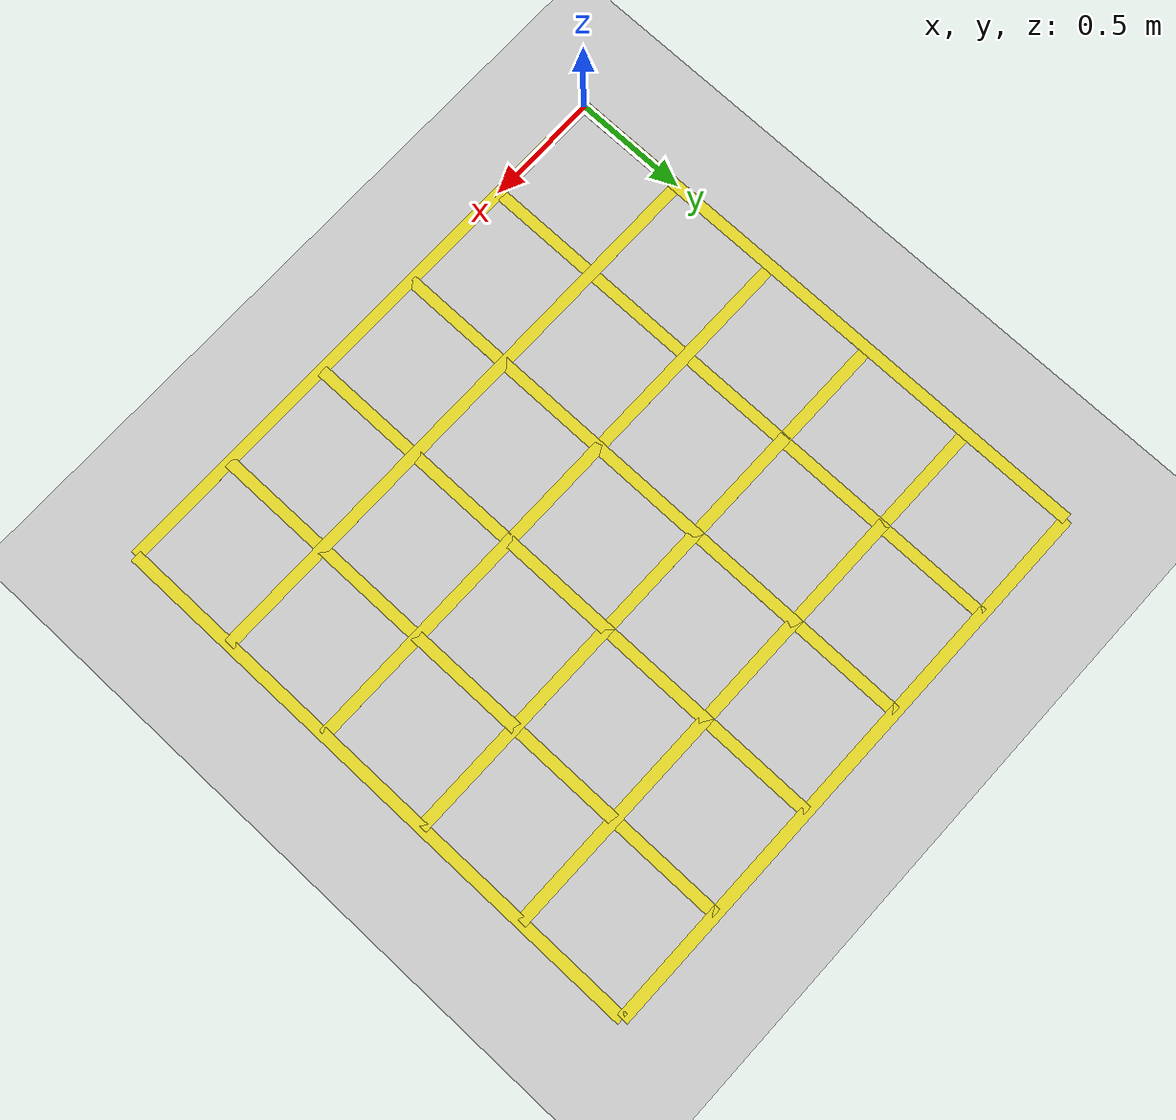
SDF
<sdf version="1.4">
 <world name="default">
  <scene><ambient>0.4 0.4 0.4 1</ambient><background>0.7 0.7 0.7 1</background><shadows>true</shadows></scene>
  <include><uri>model://sun</uri></include>
  <include><uri>model://ground_plane</uri></include>
  <include>
   <name>ly0</name>
   <uri>model://yellow_line</uri>
   <pose>1.25 0 0.0001 0 0 1.570796</pose>
   <static>true</static>
  </include>
  <include>
   <name>ly1</name>
   <uri>model://yellow_line</uri>
   <pose>1.25 0.5 0.0001 0 0 1.570796</pose>
   <static>true</static>
  </include>
  <include>
   <name>ly2</name>
   <uri>model://yellow_line</uri>
   <pose>1.25 1 0.0001 0 0 1.570796</pose>
   <static>true</static>
  </include>
  <include>
   <name>ly3</name>
   <uri>model://yellow_line</uri>
   <pose>1.25 1.5 0.0001 0 0 1.570796</pose>
   <static>true</static>
  </include>
  <include>
   <name>ly4</name>
   <uri>model://yellow_line</uri>
   <pose>1.25 2 0.0001 0 0 1.570796</pose>
   <static>true</static>
  </include>
  <include>
   <name>ly5</name>
   <uri>model://yellow_line</uri>
   <pose>1.25 2.5 0.0001 0 0 1.570796</pose>
   <static>true</static>
  </include>
  <include>
   <name>lx0</name>
   <uri>model://yellow_line</uri>
   <pose>0 1.25 0.0001 0 0 0</pose>
   <static>true</static>
  </include>
  <include>
   <name>lx1</name>
   <uri>model://yellow_line</uri>
   <pose>0.5 1.25 0.0001 0 0 0</pose>
   <static>true</static>
  </include>
  <include>
   <name>lx2</name>
   <uri>model://yellow_line</uri>
   <pose>1 1.25 0.0001 0 0 0</pose>
   <static>true</static>
  </include>
  <include>
   <name>lx3</name>
   <uri>model://yellow_line</uri>
   <pose>1.5 1.25 0.0001 0 0 0</pose>
   <static>true</static>
  </include>
  <include>
   <name>lx4</name>
   <uri>model://yellow_line</uri>
   <pose>2 1.25 0.0001 0 0 0</pose>
   <static>true</static>
  </include>
  <include>
   <name>lx5</name>
   <uri>model://yellow_line</uri>
   <pose>2.5 1.25 0.0001 0 0 0</pose>
   <static>true</static>
  </include>
  <physics type="ode">
   <real_time_update_rate>1000.0</real_time_update_rate>
   <max_step_size>0.001</max_step_size>
   <real_time_factor>1</real_time_factor>
   <ode>
    <solver>
     <type>quick</type>
     <iters>150</iters>
     <precon_iters>0</precon_iters>
     <sor>1.400000</sor>
     <use_dynamic_moi_rescaling>1</use_dynamic_moi_rescaling>
    </solver>
    <constraints>
     <cfm>0.00001</cfm>
     <erp>0.2</erp>
     <contact_max_correcting_vel>2000.000000</contact_max_correcting_vel>
     <contact_surface_layer>0.01000</contact_surface_layer>
    </constraints>
   </ode>
  </physics>
 </world>
</sdf>

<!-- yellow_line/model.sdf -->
<!-- Credit to https://github.com/sudrag/line_follower_turtlebot/tree/master/Maps/yellow%20line -->
<sdf version="1.6">
<model name="yellow line">
  <static>true</static>
    <link name="link_ground">
      <collision name="collision">
        <geometry>
          <plane>
            <normal>0 0 1</normal>
            <size>0.05 2.5</size>
          </plane>
        </geometry>

        <surface>
          <friction>
            <ode>
              <mu>100</mu>
              <mu2>50</mu2>
            </ode>
          </friction>
        </surface>
      </collision>
      <visual name="visual_ground">
        <cast_shadows>false</cast_shadows>
        <geometry>
          <plane>
            <normal>0 0 1</normal>
            <size>0.05 2.5</size>
          </plane>
        </geometry>
       <material>
          <script>
            <uri>file://media/materials/scripts/gazebo.material</uri>
            <name>Gazebo/Yellow</name>
          </script>
        </material>
      </visual>
    </link>
  </model>
</sdf>
